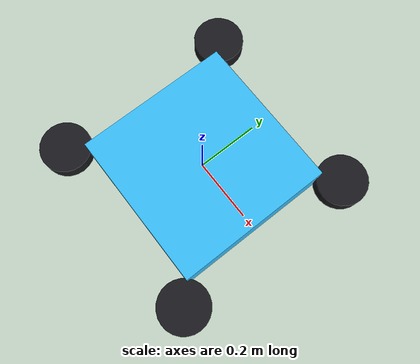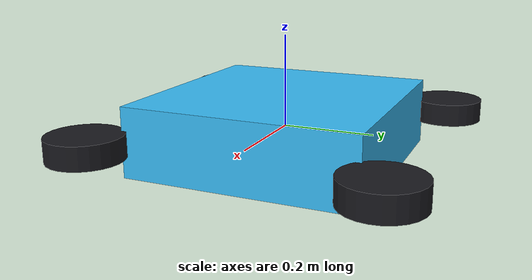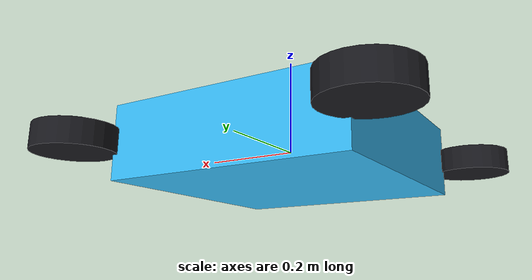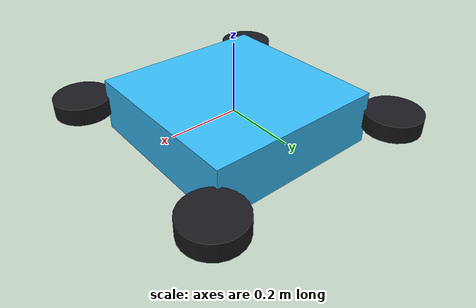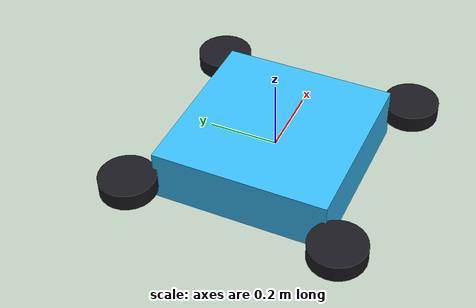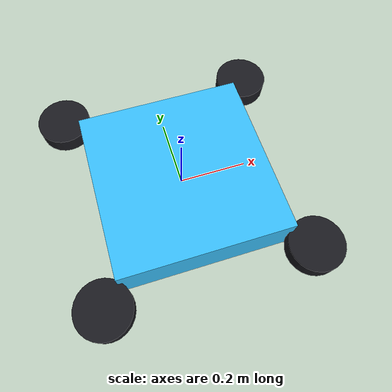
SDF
<?xml version="1.0" ?>
<sdf version="1.6">
  <model name="frugalnav_drone">
    <link name="base_link">
      <gravity>0</gravity>
      <inertial>
        <mass>1.0</mass>
        <inertia><ixx>0.02</ixx><iyy>0.02</iyy><izz>0.03</izz><ixy>0</ixy><ixz>0</ixz><iyz>0</iyz></inertia>
      </inertial>
      <collision name="c">
        <geometry><box><size>0.5 0.5 0.15</size></box></geometry>
      </collision>
      <visual name="body">
        <geometry><box><size>0.5 0.5 0.15</size></box></geometry>
        <material><ambient>0.22 0.74 0.97 1</ambient><diffuse>0.22 0.74 0.97 1</diffuse><emissive>0.05 0.2 0.3 1</emissive></material>
      </visual>
      <visual name="arm1"><pose>0.3 0.3 0 0 0 0</pose><geometry><cylinder><radius>0.08</radius><length>0.05</length></cylinder></geometry><material><ambient>0.1 0.1 0.12 1</ambient></material></visual>
      <visual name="arm2"><pose>-0.3 0.3 0 0 0 0</pose><geometry><cylinder><radius>0.08</radius><length>0.05</length></cylinder></geometry><material><ambient>0.1 0.1 0.12 1</ambient></material></visual>
      <visual name="arm3"><pose>0.3 -0.3 0 0 0 0</pose><geometry><cylinder><radius>0.08</radius><length>0.05</length></cylinder></geometry><material><ambient>0.1 0.1 0.12 1</ambient></material></visual>
      <visual name="arm4"><pose>-0.3 -0.3 0 0 0 0</pose><geometry><cylinder><radius>0.08</radius><length>0.05</length></cylinder></geometry><material><ambient>0.1 0.1 0.12 1</ambient></material></visual>
    </link>

    <!-- motion: subscribe /frugalnav/cmd_vel, move holonomically, publish odom (no TF) -->
    <plugin name="planar_move" filename="libgazebo_ros_planar_move.so">
      <ros>
        <namespace>/frugalnav</namespace>
        <remapping>cmd_vel:=cmd_vel</remapping>
        <remapping>odom:=odom_planar</remapping>
      </ros>
      <update_rate>50</update_rate>
      <publish_rate>50</publish_rate>
      <publish_odom>true</publish_odom>
      <publish_odom_tf>false</publish_odom_tf>
      <odometry_frame>world</odometry_frame>
      <robot_base_frame>base_link</robot_base_frame>
      <covariance_x>0.0</covariance_x>
      <covariance_y>0.0</covariance_y>
      <covariance_yaw>0.0</covariance_yaw>
    </plugin>

    <!-- absolute ground truth: publish base_link pose (world frame) on /frugalnav/truth -->
    <plugin name="p3d" filename="libgazebo_ros_p3d.so">
      <ros>
        <namespace>/frugalnav</namespace>
        <remapping>odom:=truth</remapping>
      </ros>
      <body_name>base_link</body_name>
      <frame_name>world</frame_name>
      <update_rate>50</update_rate>
      <gaussian_noise>0.0</gaussian_noise>
    </plugin>
  </model>
</sdf>
